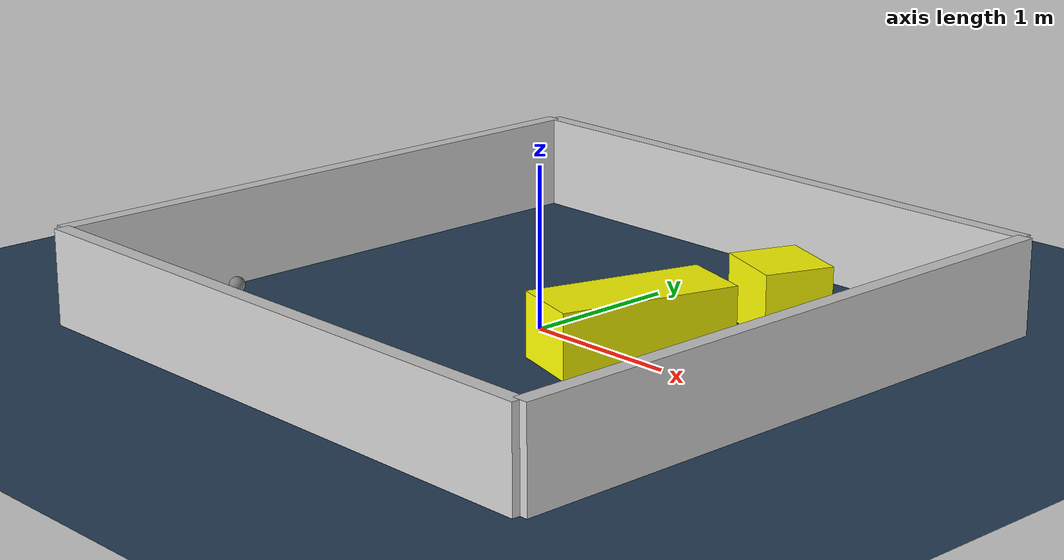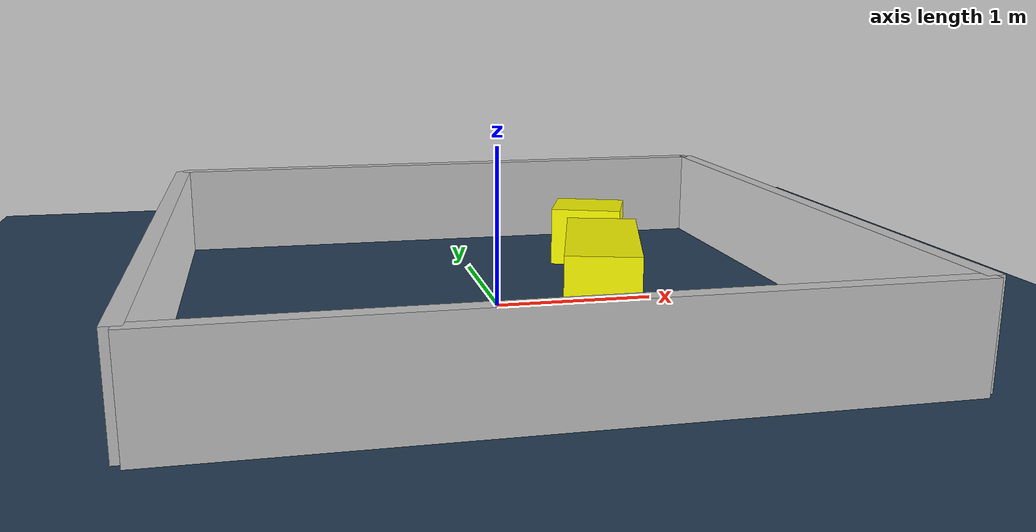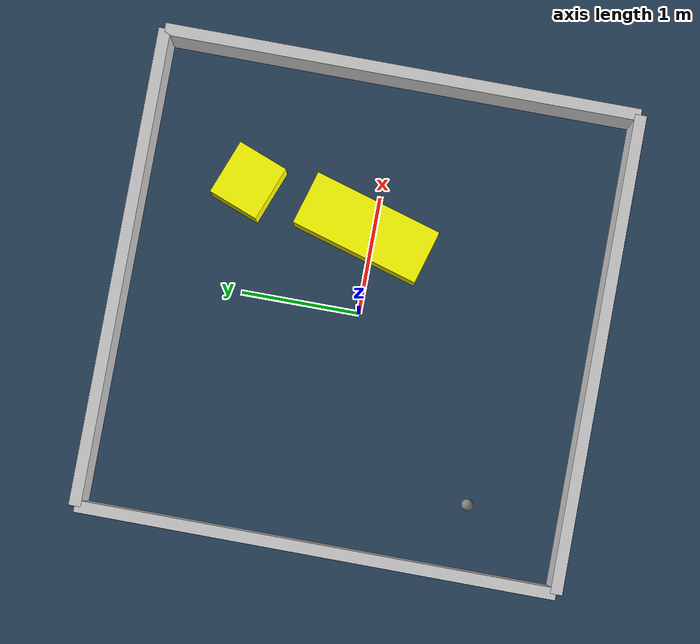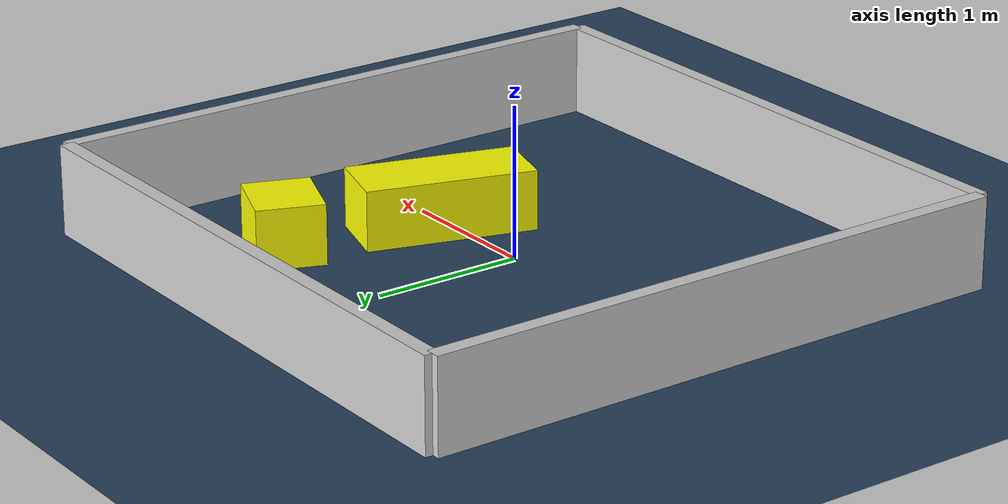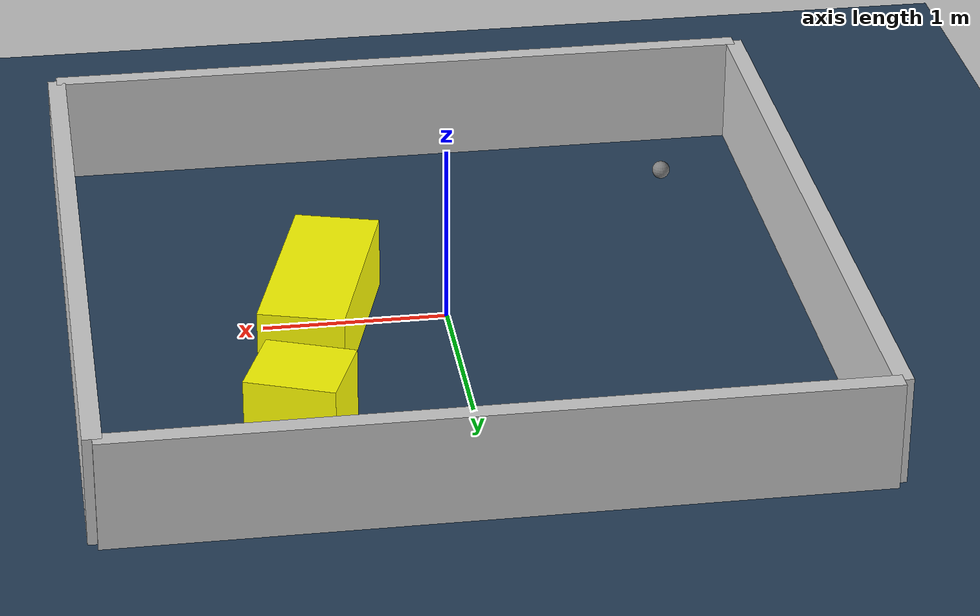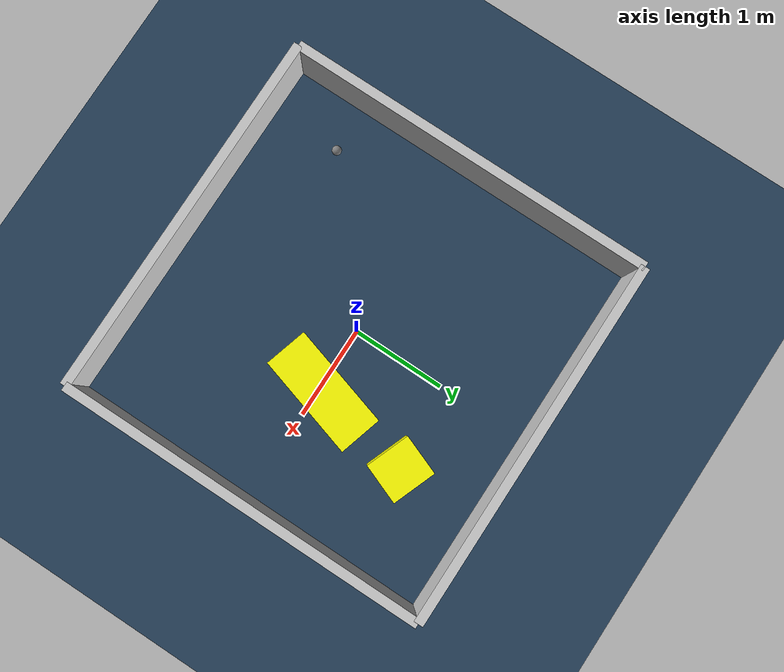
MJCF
<?xml version="1.0" ?>
<mujoco model="generated_environment">
  <option timestep="0.01" integrator="RK4" cone="elliptic"/>
  <default>
    <geom density="1"/>
  </default>
  <asset>
    <texture builtin="gradient" height="3072" rgb1="0.3 0.5 0.7" rgb2="0 0 0" type="skybox" width="512"/>
    <texture builtin="checker" height="300" mark="edge" markrgb="0.8 0.8 0.8" name="groundplane" rgb1="0.2 0.3 0.4" rgb2="0.1 0.2 0.3" type="2d" width="300"/>
    <material name="groundplane" reflectance="0.2" texrepeat="5 5" texture="groundplane" texuniform="true"/>
    <material name="robot" rgba="0.0 1.0 0.0 1"/>
  </asset>
  <worldbody>
    <light dir="0 0 -1" directional="true" pos="0 0 1.5"/>
    <geom condim="4" friction="1.0 0.005 0.001" material="groundplane" name="floor" size="0 0 0.05" type="plane"/>
    <body name="walls">
      <geom name="wall_1" condim="4" pos="-2.0 0.0 0.3" rgba="0.800000011920929 0.800000011920929 0.800000011920929 1.0" size="0.05 2.0 0.3" type="box"/>
      <geom name="wall_2" condim="4" pos="2.0 0.0 0.3" rgba="0.800000011920929 0.800000011920929 0.800000011920929 1.0" size="0.05 2.0 0.3" type="box"/>
      <geom name="wall_3" condim="4" pos="0.0 -2.0 0.3" rgba="0.800000011920929 0.800000011920929 0.800000011920929 1.0" size="2.0 0.05 0.3" type="box"/>
      <geom name="wall_4" condim="4" pos="0.0 2.0 0.3" rgba="0.800000011920929 0.800000011920929 0.800000011920929 1.0" size="2.0 0.05 0.3" type="box"/>
    </body>
    <body name="robot">
      <joint name="joint_x" type="slide" pos="0 0 0" axis="1 0 0"/>
      <joint name="joint_y" type="slide" pos="0 0 0" axis="0 1 0"/>
      <geom name="robot" type="sphere" pos="-1.413855034892006 -1.1723054363069636 0.2" size="0.05" mass="5." friction="1.0 0.005 0.0001" condim="4"/>
      <site name="sensor_ball"/>
    </body>
    <body name="obstacle_1_movable">
      <geom name="obstacle_1_movable" condim="4" pos="0.9067244149845743 1.10538113710996 0.2" euler="0 0 249.0623917581738" friction="1.0 0.005 0.001" rgba="1 1 0 1" size="0.22125420869090895 0.24299244037486095 0.2" type="box" mass="0.1"/>
      <joint type="free"/>
    </body>
    <body name="obstacle_2_movable">
      <geom name="obstacle_2_movable" condim="4" pos="0.6965995288000735 0.0671907245240364 0.2" euler="0 0 253.73765435151995" friction="1.0 0.005 0.001" rgba="1 1 0 1" size="0.5631071256000267 0.23297128972397496 0.2" type="box" mass="0.1"/>
      <joint type="free"/>
    </body>
  </worldbody>
  <actuator>
    <motor name="actuator_x" joint="joint_x" gear="1" ctrlrange="-1 1"/>
    <motor name="actuator_y" joint="joint_y" gear="1" ctrlrange="-1 1"/>
  </actuator>
</mujoco>
